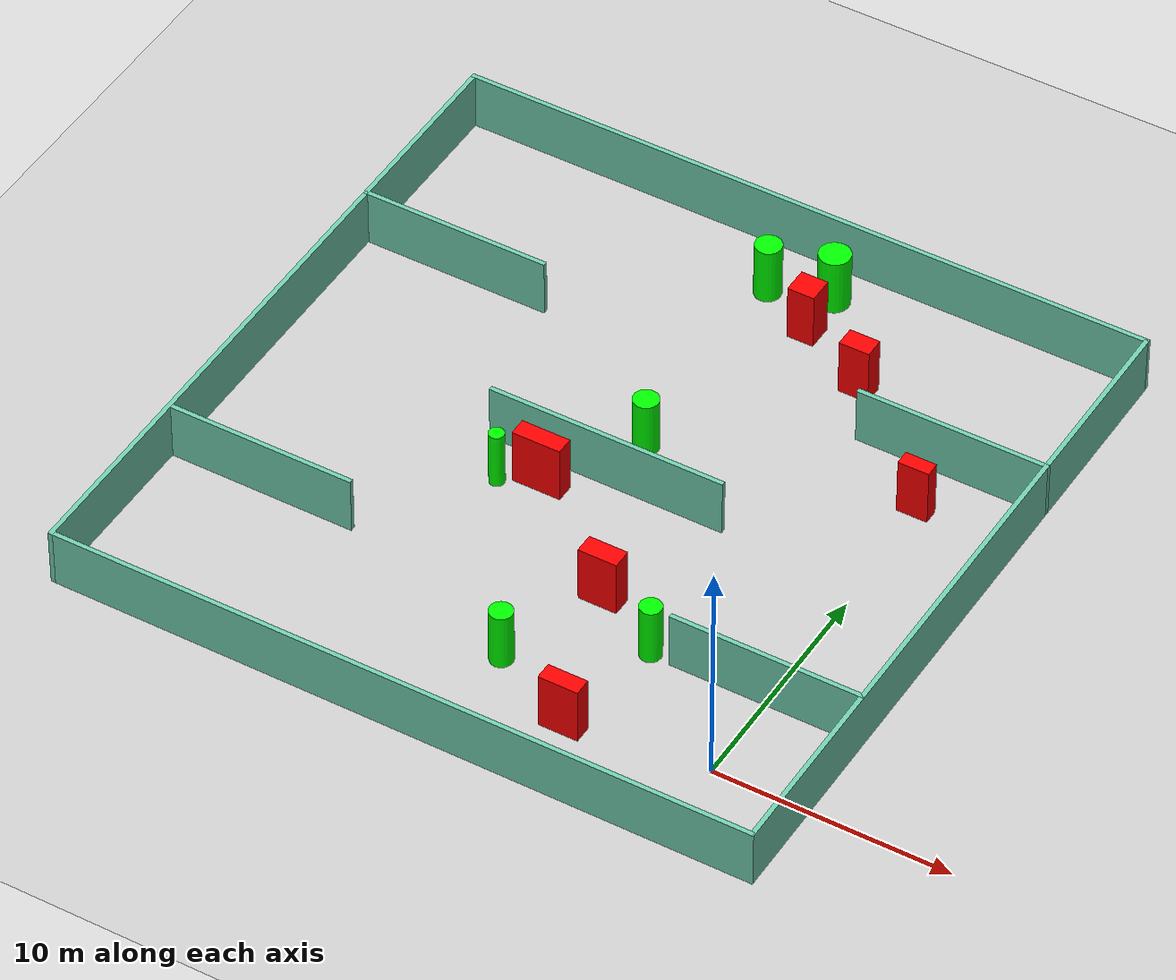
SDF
<sdf version="1.7">
 <world name="default">
  <light name="sun" type="directional">
   <pose>0 0 10 0 -0 0</pose>
   <diffuse>0.8 0.8 0.8 1</diffuse>
   <specular>0.2 0.2 0.2 1</specular>
   <attenuation>
    <range>1000</range>
    <constant>0.9</constant>
    <linear>0.01</linear>
    <quadratic>0.001</quadratic>
   </attenuation>
   <direction>-0.5 0.1 -0.9</direction>
   <spot><inner_angle>0</inner_angle><outer_angle>0</outer_angle><falloff>0</falloff></spot>
  </light>
  <model name="ground_plane">
   <static>1</static>
   <link name="link">
    <collision name="collision">
     <geometry><plane><normal>0 0 1</normal><size>100 100</size></plane></geometry>
     <surface>
      <contact><collide_bitmask>65535</collide_bitmask></contact>
      <friction><ode><mu>100</mu><mu2>50</mu2></ode></friction>
     </surface>
    </collision>
    <visual name="visual">
     <cast_shadows>0</cast_shadows>
     <geometry><plane><normal>0 0 1</normal><size>100 100</size></plane></geometry>
     <material>
      <script><uri>file://media/materials/scripts/gazebo.material</uri><name>Gazebo/Grey</name></script>
     </material>
    </visual>
   </link>
  </model>
  <gravity>0 0 -9.8</gravity>
  <magnetic_field>6e-06 2.3e-05 -4.2e-05</magnetic_field>
  <atmosphere type="adiabatic"/>
  <physics type="ode">
   <max_step_size>0.001</max_step_size>
   <real_time_factor>1</real_time_factor>
   <real_time_update_rate>1000</real_time_update_rate>
  </physics>
  <scene><ambient>0.4 0.4 0.4 1</ambient><background>0.7 0.7 0.7 1</background><shadows>1</shadows></scene>
  <spherical_coordinates>
   <surface_model>EARTH_WGS84</surface_model>
   <latitude_deg>0</latitude_deg>
   <longitude_deg>0</longitude_deg>
   <elevation>0</elevation>
   <heading_deg>0</heading_deg>
  </spherical_coordinates>
  <model name="my_base_walls">
   <link name="Wall_10">
    <collision name="Wall_10_Collision">
     <geometry><box><size>8.2 0.2 2.5</size></box></geometry>
     <pose>0 0 1.25 0 -0 0</pose>
    </collision>
    <visual name="Wall_10_Visual">
     <pose>0 0 1.25 0 -0 0</pose>
     <geometry><box><size>8.2 0.2 2.5</size></box></geometry>
     <material>
      <script><uri>file://media/materials/scripts/gazebo.material</uri><name>Gazebo/Grey</name></script>
      <ambient>0.435294 0.796078 0.67451 1</ambient>
     </material>
     <meta><layer>0</layer></meta>
    </visual>
    <pose>-11 -7 0 0 -0 0</pose>
   </link>
   <link name="Wall_12">
    <collision name="Wall_12_Collision">
     <geometry><box><size>8.2 0.2 2.5</size></box></geometry>
     <pose>0 0 1.25 0 -0 0</pose>
    </collision>
    <visual name="Wall_12_Visual">
     <pose>0 0 1.25 0 -0 0</pose>
     <geometry><box><size>8.2 0.2 2.5</size></box></geometry>
     <material>
      <script><uri>file://media/materials/scripts/gazebo.material</uri><name>Gazebo/Grey</name></script>
      <ambient>0.435294 0.796078 0.67451 1</ambient>
     </material>
     <meta><layer>0</layer></meta>
    </visual>
    <pose>-11 7 0 0 -0 0</pose>
   </link>
   <link name="Wall_14">
    <collision name="Wall_14_Collision">
     <geometry><box><size>8.2 0.2 2.5</size></box></geometry>
     <pose>0 0 1.25 0 -0 0</pose>
    </collision>
    <visual name="Wall_14_Visual">
     <pose>0 0 1.25 0 -0 0</pose>
     <geometry><box><size>8.2 0.2 2.5</size></box></geometry>
     <material>
      <script><uri>file://media/materials/scripts/gazebo.material</uri><name>Gazebo/Grey</name></script>
      <ambient>0.435294 0.796078 0.67451 1</ambient>
     </material>
     <meta><layer>0</layer></meta>
    </visual>
    <pose>11 7 0 0 -0 3.14159</pose>
   </link>
   <link name="Wall_16">
    <collision name="Wall_16_Collision">
     <geometry><box><size>10.2 0.2 2.5</size></box></geometry>
     <pose>0 0 1.25 0 -0 0</pose>
    </collision>
    <visual name="Wall_16_Visual">
     <pose>0 0 1.25 0 -0 0</pose>
     <geometry><box><size>10.2 0.2 2.5</size></box></geometry>
     <material>
      <script><uri>file://media/materials/scripts/gazebo.material</uri><name>Gazebo/Grey</name></script>
      <ambient>0.435294 0.796078 0.67451 1</ambient>
     </material>
     <meta><layer>0</layer></meta>
    </visual>
    <pose>0 0 0 0 -0 3.14159</pose>
   </link>
   <link name="Wall_2">
    <collision name="Wall_2_Collision">
     <geometry><box><size>30.2 0.2 2.5</size></box></geometry>
     <pose>0 0 1.25 0 -0 0</pose>
    </collision>
    <visual name="Wall_2_Visual">
     <pose>0 0 1.25 0 -0 0</pose>
     <geometry><box><size>30.2 0.2 2.5</size></box></geometry>
     <material>
      <script><uri>file://media/materials/scripts/gazebo.material</uri><name>Gazebo/Grey</name></script>
      <ambient>0.435294 0.796078 0.67451 1</ambient>
     </material>
     <meta><layer>0</layer></meta>
    </visual>
    <pose>0 -15 0 0 -0 3.14159</pose>
   </link>
   <link name="Wall_3">
    <collision name="Wall_3_Collision">
     <geometry><box><size>30.2 0.2 2.5</size></box></geometry>
     <pose>0 0 1.25 0 -0 0</pose>
    </collision>
    <visual name="Wall_3_Visual">
     <pose>0 0 1.25 0 -0 0</pose>
     <geometry><box><size>30.2 0.2 2.5</size></box></geometry>
     <material>
      <script><uri>file://media/materials/scripts/gazebo.material</uri><name>Gazebo/Grey</name></script>
      <ambient>0.435294 0.796078 0.67451 1</ambient>
     </material>
     <meta><layer>0</layer></meta>
    </visual>
    <pose>-15 0 0 0 -0 1.5708</pose>
   </link>
   <link name="Wall_4">
    <collision name="Wall_4_Collision">
     <geometry><box><size>30.2 0.2 2.5</size></box></geometry>
     <pose>0 0 1.25 0 -0 0</pose>
    </collision>
    <visual name="Wall_4_Visual">
     <pose>0 0 1.25 0 -0 0</pose>
     <geometry><box><size>30.2 0.2 2.5</size></box></geometry>
     <material>
      <script><uri>file://media/materials/scripts/gazebo.material</uri><name>Gazebo/Grey</name></script>
      <ambient>0.435294 0.796078 0.67451 1</ambient>
     </material>
     <meta><layer>0</layer></meta>
    </visual>
    <pose>0 15 0 0 -0 0</pose>
   </link>
   <link name="Wall_6">
    <collision name="Wall_6_Collision">
     <geometry><box><size>30.2 0.2 2.5</size></box></geometry>
     <pose>0 0 1.25 0 -0 0</pose>
    </collision>
    <visual name="Wall_6_Visual">
     <pose>0 0 1.25 0 -0 0</pose>
     <geometry><box><size>30.2 0.2 2.5</size></box></geometry>
     <material>
      <script><uri>file://media/materials/scripts/gazebo.material</uri><name>Gazebo/Grey</name></script>
      <ambient>0.435294 0.796078 0.67451 1</ambient>
     </material>
     <meta><layer>0</layer></meta>
    </visual>
    <pose>15 0 0 0 -0 1.5708</pose>
   </link>
   <link name="Wall_8">
    <collision name="Wall_8_Collision">
     <geometry><box><size>8.2 0.2 2.5</size></box></geometry>
     <pose>0 0 1.25 0 -0 0</pose>
    </collision>
    <visual name="Wall_8_Visual">
     <pose>0 0 1.25 0 -0 0</pose>
     <geometry><box><size>8.2 0.2 2.5</size></box></geometry>
     <material>
      <script><uri>file://media/materials/scripts/gazebo.material</uri><name>Gazebo/Grey</name></script>
      <ambient>0.435294 0.796078 0.67451 1</ambient>
     </material>
     <meta><layer>0</layer></meta>
    </visual>
    <pose>11 -7 0 0 -0 3.14159</pose>
   </link>
   <static>1</static>
   <pose>-11 11 0 0 -0 0</pose>
  </model>
  <model name="cylinder1">
   <static>1</static>
   <link name="link">
    <inertial>
     <mass>1</mass>
     <inertia><ixx>0.5</ixx><ixy>0</ixy><ixz>0</ixz><iyy>0.5</iyy><iyz>0</iyz><izz>1</izz></inertia>
    </inertial>
    <collision name="collision">
     <geometry><cylinder><radius>0.4576326564480706</radius><length>2.5</length></cylinder></geometry>
    </collision>
    <visual name="visual">
     <geometry><cylinder><radius>0.4576326564480706</radius><length>2.5</length></cylinder></geometry>
     <material>
      <ambient>0 1 0 1</ambient>
      <diffuse>0 1 0 1</diffuse>
      <specular>0.1 0.1 0.1 1</specular>
      <emissive>0 0 0 0</emissive>
     </material>
    </visual>
   </link>
   <pose>-4.943810253257492 4.033172567435187 1.25 0 0 0</pose>
  </model>
  <model name="cylinder2">
   <static>1</static>
   <link name="link">
    <inertial>
     <mass>1</mass>
     <inertia><ixx>0.5</ixx><ixy>0</ixy><ixz>0</ixz><iyy>0.5</iyy><iyz>0</iyz><izz>1</izz></inertia>
    </inertial>
    <collision name="collision">
     <geometry><cylinder><radius>0.5653980405606558</radius><length>2.5</length></cylinder></geometry>
    </collision>
    <visual name="visual">
     <geometry><cylinder><radius>0.5653980405606558</radius><length>2.5</length></cylinder></geometry>
     <material>
      <ambient>0 1 0 1</ambient>
      <diffuse>0 1 0 1</diffuse>
      <specular>0.1 0.1 0.1 1</specular>
      <emissive>0 0 0 0</emissive>
     </material>
    </visual>
   </link>
   <pose>-11.071914313770245 23.35347819231264 1.25 0 0 0</pose>
  </model>
  <model name="cylinder3">
   <static>1</static>
   <link name="link">
    <inertial>
     <mass>1</mass>
     <inertia><ixx>0.5</ixx><ixy>0</ixy><ixz>0</ixz><iyy>0.5</iyy><iyz>0</iyz><izz>1</izz></inertia>
    </inertial>
    <collision name="collision">
     <geometry><cylinder><radius>0.666236123079986</radius><length>2.5</length></cylinder></geometry>
    </collision>
    <visual name="visual">
     <geometry><cylinder><radius>0.666236123079986</radius><length>2.5</length></cylinder></geometry>
     <material>
      <ambient>0 1 0 1</ambient>
      <diffuse>0 1 0 1</diffuse>
      <specular>0.1 0.1 0.1 1</specular>
      <emissive>0 0 0 0</emissive>
     </material>
    </visual>
   </link>
   <pose>-8.609880433092584 24.200298893717346 1.25 0 0 0</pose>
  </model>
  <model name="cylinder4">
   <static>1</static>
   <link name="link">
    <inertial>
     <mass>1</mass>
     <inertia><ixx>0.5</ixx><ixy>0</ixy><ixz>0</ixz><iyy>0.5</iyy><iyz>0</iyz><izz>1</izz></inertia>
    </inertial>
    <collision name="collision">
     <geometry><cylinder><radius>0.5359455535277045</radius><length>2.5</length></cylinder></geometry>
    </collision>
    <visual name="visual">
     <geometry><cylinder><radius>0.5359455535277045</radius><length>2.5</length></cylinder></geometry>
     <material>
      <ambient>0 1 0 1</ambient>
      <diffuse>0 1 0 1</diffuse>
      <specular>0.1 0.1 0.1 1</specular>
      <emissive>0 0 0 0</emissive>
     </material>
    </visual>
   </link>
   <pose>-10.723339351825834 13.473028994835605 1.25 0 0 0</pose>
  </model>
  <model name="cylinder5">
   <static>1</static>
   <link name="link">
    <inertial>
     <mass>1</mass>
     <inertia><ixx>0.5</ixx><ixy>0</ixy><ixz>0</ixz><iyy>0.5</iyy><iyz>0</iyz><izz>1</izz></inertia>
    </inertial>
    <collision name="collision">
     <geometry><cylinder><radius>0.3219272615046972</radius><length>2.5</length></cylinder></geometry>
    </collision>
    <visual name="visual">
     <geometry><cylinder><radius>0.3219272615046972</radius><length>2.5</length></cylinder></geometry>
     <material>
      <ambient>0 1 0 1</ambient>
      <diffuse>0 1 0 1</diffuse>
      <specular>0.1 0.1 0.1 1</specular>
      <emissive>0 0 0 0</emissive>
     </material>
    </visual>
   </link>
   <pose>-14.608443087473145 8.997232897836074 1.25 0 0 0</pose>
  </model>
  <model name="cylinder6">
   <static>1</static>
   <link name="link">
    <inertial>
     <mass>1</mass>
     <inertia><ixx>0.5</ixx><ixy>0</ixy><ixz>0</ixz><iyy>0.5</iyy><iyz>0</iyz><izz>1</izz></inertia>
    </inertial>
    <collision name="collision">
     <geometry><cylinder><radius>0.48707041877566715</radius><length>2.5</length></cylinder></geometry>
    </collision>
    <visual name="visual">
     <geometry><cylinder><radius>0.48707041877566715</radius><length>2.5</length></cylinder></geometry>
     <material>
      <ambient>0 1 0 1</ambient>
      <diffuse>0 1 0 1</diffuse>
      <specular>0.1 0.1 0.1 1</specular>
      <emissive>0 0 0 0</emissive>
     </material>
    </visual>
   </link>
   <pose>-9.550126394885993 1.0192375509829237 1.25 0 0 0</pose>
  </model>
  <model name="box1">
   <static>1</static>
   <link name="link">
    <inertial>
     <mass>1</mass>
     <inertia><ixx>0.083</ixx><ixy>0</ixy><ixz>0</ixz><iyy>0.083</iyy><iyz>0</iyz><izz>0.083</izz></inertia>
    </inertial>
    <collision name="collision">
     <geometry><box><size>1.1647703450433653 1.1022568903167826 2.5</size></box></geometry>
    </collision>
    <visual name="visual">
     <geometry><box><size>1.1647703450433653 1.1022568903167826 2.5</size></box></geometry>
     <material>
      <ambient>1 0 0 1</ambient>
      <diffuse>1 0 0 1</diffuse>
      <specular>0.1 0.1 0.1 1</specular>
      <emissive>0 0 0 0</emissive>
     </material>
    </visual>
    <sensor name="my_contact" type="contact">
     <contact><collision>box_collision</collision><topic>__default_topic__</topic></contact>
    </sensor>
   </link>
   <pose>-8.619150212009288 22.11124993562235 1.25 0 0 0</pose>
  </model>
  <model name="box2">
   <static>1</static>
   <link name="link">
    <inertial>
     <mass>1</mass>
     <inertia><ixx>0.083</ixx><ixy>0</ixy><ixz>0</ixz><iyy>0.083</iyy><iyz>0</iyz><izz>0.083</izz></inertia>
    </inertial>
    <collision name="collision">
     <geometry><box><size>1.3238297510001529 0.630336385462442 2.5</size></box></geometry>
    </collision>
    <visual name="visual">
     <geometry><box><size>1.3238297510001529 0.630336385462442 2.5</size></box></geometry>
     <material>
      <ambient>1 0 0 1</ambient>
      <diffuse>1 0 0 1</diffuse>
      <specular>0.1 0.1 0.1 1</specular>
      <emissive>0 0 0 0</emissive>
     </material>
    </visual>
    <sensor name="my_contact" type="contact">
     <contact><collision>box_collision</collision><topic>__default_topic__</topic></contact>
    </sensor>
   </link>
   <pose>-0.21954291792830105 15.64712374193498 1.25 0 0 0</pose>
  </model>
  <model name="box3">
   <static>1</static>
   <link name="link">
    <inertial>
     <mass>1</mass>
     <inertia><ixx>0.083</ixx><ixy>0</ixy><ixz>0</ixz><iyy>0.083</iyy><iyz>0</iyz><izz>0.083</izz></inertia>
    </inertial>
    <collision name="collision">
     <geometry><box><size>1.6617686003452654 0.8370941706733779 2.5</size></box></geometry>
    </collision>
    <visual name="visual">
     <geometry><box><size>1.6617686003452654 0.8370941706733779 2.5</size></box></geometry>
     <material>
      <ambient>1 0 0 1</ambient>
      <diffuse>1 0 0 1</diffuse>
      <specular>0.1 0.1 0.1 1</specular>
      <emissive>0 0 0 0</emissive>
     </material>
    </visual>
    <sensor name="my_contact" type="contact">
     <contact><collision>box_collision</collision><topic>__default_topic__</topic></contact>
    </sensor>
   </link>
   <pose>-7.9309895126075 5.60949072263373 1.25 0 0 0</pose>
  </model>
  <model name="box4">
   <static>1</static>
   <link name="link">
    <inertial>
     <mass>1</mass>
     <inertia><ixx>0.083</ixx><ixy>0</ixy><ixz>0</ixz><iyy>0.083</iyy><iyz>0</iyz><izz>0.083</izz></inertia>
    </inertial>
    <collision name="collision">
     <geometry><box><size>2.0912892499840883 0.7635623820455115 2.5</size></box></geometry>
    </collision>
    <visual name="visual">
     <geometry><box><size>2.0912892499840883 0.7635623820455115 2.5</size></box></geometry>
     <material>
      <ambient>1 0 0 1</ambient>
      <diffuse>1 0 0 1</diffuse>
      <specular>0.1 0.1 0.1 1</specular>
      <emissive>0 0 0 0</emissive>
     </material>
    </visual>
    <sensor name="my_contact" type="contact">
     <contact><collision>box_collision</collision><topic>__default_topic__</topic></contact>
    </sensor>
   </link>
   <pose>-13.078113586013282 9.699529604427543 1.25 0 0 0</pose>
  </model>
  <model name="box5">
   <static>1</static>
   <link name="link">
    <inertial>
     <mass>1</mass>
     <inertia><ixx>0.083</ixx><ixy>0</ixy><ixz>0</ixz><iyy>0.083</iyy><iyz>0</iyz><izz>0.083</izz></inertia>
    </inertial>
    <collision name="collision">
     <geometry><box><size>1.3058979087579896 0.8616591464551494 2.5</size></box></geometry>
    </collision>
    <visual name="visual">
     <geometry><box><size>1.3058979087579896 0.8616591464551494 2.5</size></box></geometry>
     <material>
      <ambient>1 0 0 1</ambient>
      <diffuse>1 0 0 1</diffuse>
      <specular>0.1 0.1 0.1 1</specular>
      <emissive>0 0 0 0</emissive>
     </material>
    </visual>
    <sensor name="my_contact" type="contact">
     <contact><collision>box_collision</collision><topic>__default_topic__</topic></contact>
    </sensor>
   </link>
   <pose>-5.343874146596541 20.338310000356394 1.25 0 0 0</pose>
  </model>
  <model name="box6">
   <static>1</static>
   <link name="link">
    <inertial>
     <mass>1</mass>
     <inertia><ixx>0.083</ixx><ixy>0</ixy><ixz>0</ixz><iyy>0.083</iyy><iyz>0</iyz><izz>0.083</izz></inertia>
    </inertial>
    <collision name="collision">
     <geometry><box><size>1.6815132548238838 0.740262416407791 2.5</size></box></geometry>
    </collision>
    <visual name="visual">
     <geometry><box><size>1.6815132548238838 0.740262416407791 2.5</size></box></geometry>
     <material>
      <ambient>1 0 0 1</ambient>
      <diffuse>1 0 0 1</diffuse>
      <specular>0.1 0.1 0.1 1</specular>
      <emissive>0 0 0 0</emissive>
     </material>
    </visual>
    <sensor name="my_contact" type="contact">
     <contact><collision>box_collision</collision><topic>__default_topic__</topic></contact>
    </sensor>
   </link>
   <pose>-5.790712453786046 -0.8251633379911465 1.25 0 0 0</pose>
  </model>
 </world>
</sdf>
